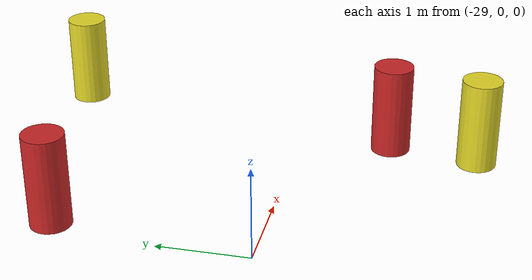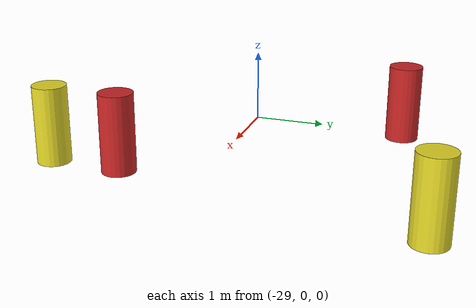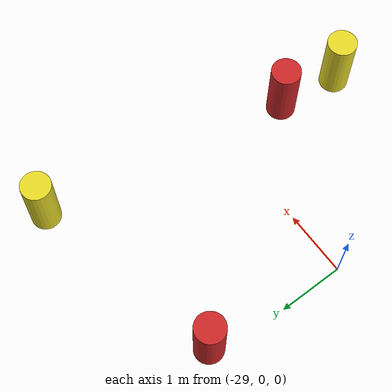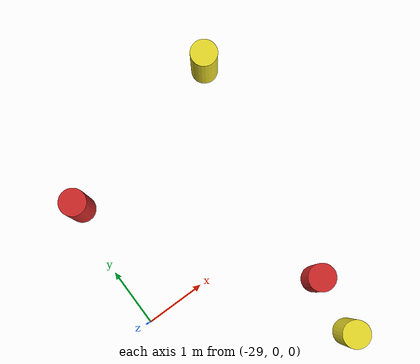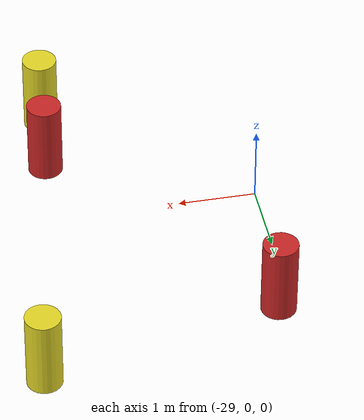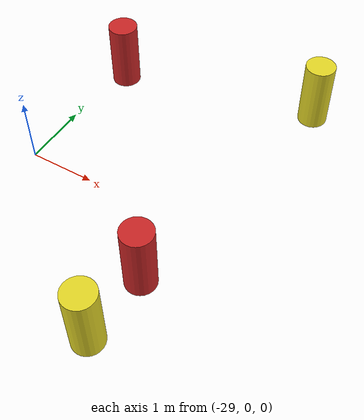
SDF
<sdf version="1.10">
 <world name="IGVC_AutoNav">
  <model name="barrel_11">
   <link name="link">
    <inertial>
     <mass>1</mass>
     <inertia>
      <ixx>0.14583299999999999</ixx>
      <ixy>0</ixy>
      <ixz>0</ixz>
      <iyy>0.14583299999999999</iyy>
      <iyz>0</iyz>
      <izz>0.125</izz>
     </inertia>
    </inertial>
    <visual name="visual">
     <geometry><cylinder><radius>0.222916</radius><length>1.0356700000000001</length></cylinder></geometry>
     <material>
      <script><name>Gazebo/Yellow</name><uri>file://media/materials/scripts/gazebo.material</uri></script>
      <shader type="pixel"/>
     </material>
    </visual>
    <collision name="collision">
     <geometry><cylinder><radius>0.222916</radius><length>1.0356700000000001</length></cylinder></geometry>
     <surface>
      <friction>
       <ode><mu>1</mu><mu2>1</mu2><fdir1>0 0 0</fdir1><slip1>0</slip1><slip2>0</slip2></ode>
       <torsional>
        <coefficient>1</coefficient>
        <patch_radius>0</patch_radius>
        <surface_radius>0</surface_radius>
        <use_patch_radius>true</use_patch_radius>
        <ode><slip>0</slip></ode>
       </torsional>
      </friction>
      <bounce><restitution_coefficient>0</restitution_coefficient><threshold>1000000</threshold></bounce>
      <contact>
       <collide_without_contact>false</collide_without_contact>
       <collide_without_contact_bitmask>1</collide_without_contact_bitmask>
       <collide_bitmask>1</collide_bitmask>
       <ode>
        <soft_cfm>0</soft_cfm>
        <soft_erp>0.20000000000000001</soft_erp>
        <kp>10000000000000</kp>
        <kd>1</kd>
        <max_vel>0.01</max_vel>
        <min_depth>0</min_depth>
       </ode>
       <bullet>
        <split_impulse>true</split_impulse>
        <split_impulse_penetration_threshold>-0.01</split_impulse_penetration_threshold>
        <soft_cfm>0</soft_cfm>
        <soft_erp>0.20000000000000001</soft_erp>
        <kp>10000000000000</kp>
        <kd>1</kd>
       </bullet>
      </contact>
     </surface>
    </collision>
   </link>
   <static>false</static>
   <pose>-26.542016983032227 -2.0249800682067871 0.48987001040062333 -1.2867676321097474e-16 8.4994269969485822e-17 -8.2203599658712203e-18</pose>
  </model>
  <model name="barrel_16">
   <link name="link">
    <inertial>
     <mass>1</mass>
     <inertia>
      <ixx>0.14583299999999999</ixx>
      <ixy>0</ixy>
      <ixz>0</ixz>
      <iyy>0.14583299999999999</iyy>
      <iyz>0</iyz>
      <izz>0.125</izz>
     </inertia>
    </inertial>
    <visual name="visual">
     <geometry><cylinder><radius>0.222916</radius><length>1.0356700000000001</length></cylinder></geometry>
     <material>
      <script><name>Gazebo/Yellow</name><uri>file://media/materials/scripts/gazebo.material</uri></script>
      <shader type="pixel"/>
     </material>
    </visual>
    <collision name="collision">
     <geometry><cylinder><radius>0.222916</radius><length>1.0356700000000001</length></cylinder></geometry>
     <surface>
      <friction>
       <ode><mu>1</mu><mu2>1</mu2><fdir1>0 0 0</fdir1><slip1>0</slip1><slip2>0</slip2></ode>
       <torsional>
        <coefficient>1</coefficient>
        <patch_radius>0</patch_radius>
        <surface_radius>0</surface_radius>
        <use_patch_radius>true</use_patch_radius>
        <ode><slip>0</slip></ode>
       </torsional>
      </friction>
      <bounce><restitution_coefficient>0</restitution_coefficient><threshold>1000000</threshold></bounce>
      <contact>
       <collide_without_contact>false</collide_without_contact>
       <collide_without_contact_bitmask>1</collide_without_contact_bitmask>
       <collide_bitmask>1</collide_bitmask>
       <ode>
        <soft_cfm>0</soft_cfm>
        <soft_erp>0.20000000000000001</soft_erp>
        <kp>10000000000000</kp>
        <kd>1</kd>
        <max_vel>0.01</max_vel>
        <min_depth>0</min_depth>
       </ode>
       <bullet>
        <split_impulse>true</split_impulse>
        <split_impulse_penetration_threshold>-0.01</split_impulse_penetration_threshold>
        <soft_cfm>0</soft_cfm>
        <soft_erp>0.20000000000000001</soft_erp>
        <kp>10000000000000</kp>
        <kd>1</kd>
       </bullet>
      </contact>
     </surface>
    </collision>
   </link>
   <static>false</static>
   <pose>-25.781974792480469 2.863569974899292 0.49057155326225477 -8.1219256546073404e-17 3.7478138114279507e-17 -2.3832538959433325e-17</pose>
  </model>
  <model name="barrel_26_clone">
   <link name="link">
    <inertial>
     <mass>1</mass>
     <inertia>
      <ixx>0.14583299999999999</ixx>
      <ixy>0</ixy>
      <ixz>0</ixz>
      <iyy>0.14583299999999999</iyy>
      <iyz>0</iyz>
      <izz>0.125</izz>
     </inertia>
    </inertial>
    <visual name="visual">
     <geometry><cylinder><radius>0.222916</radius><length>1.0356700000000001</length></cylinder></geometry>
     <material>
      <script><name>Gazebo/Red</name><uri>file://media/materials/scripts/gazebo.material</uri></script>
      <shader type="pixel"/>
     </material>
    </visual>
    <collision name="collision">
     <geometry><cylinder><radius>0.222916</radius><length>1.0356700000000001</length></cylinder></geometry>
     <surface>
      <friction>
       <ode><mu>1</mu><mu2>1</mu2><fdir1>0 0 0</fdir1><slip1>0</slip1><slip2>0</slip2></ode>
       <torsional>
        <coefficient>1</coefficient>
        <patch_radius>0</patch_radius>
        <surface_radius>0</surface_radius>
        <use_patch_radius>true</use_patch_radius>
        <ode><slip>0</slip></ode>
       </torsional>
      </friction>
      <bounce><restitution_coefficient>0</restitution_coefficient><threshold>1000000</threshold></bounce>
      <contact>
       <collide_without_contact>false</collide_without_contact>
       <collide_without_contact_bitmask>1</collide_without_contact_bitmask>
       <collide_bitmask>1</collide_bitmask>
       <ode>
        <soft_cfm>0</soft_cfm>
        <soft_erp>0.20000000000000001</soft_erp>
        <kp>10000000000000</kp>
        <kd>1</kd>
        <max_vel>0.01</max_vel>
        <min_depth>0</min_depth>
       </ode>
       <bullet>
        <split_impulse>true</split_impulse>
        <split_impulse_penetration_threshold>-0.01</split_impulse_penetration_threshold>
        <soft_cfm>0</soft_cfm>
        <soft_erp>0.20000000000000001</soft_erp>
        <kp>10000000000000</kp>
        <kd>1</kd>
       </bullet>
      </contact>
     </surface>
    </collision>
   </link>
   <static>false</static>
   <pose>-28.813776016235352 2.1700680255889888 0.51783403716017551 -6.6859053598700135e-20 -1.5574018807738785e-19 0.00032800204395827976</pose>
  </model>
  <model name="barrel_26_clone_0">
   <link name="link">
    <inertial>
     <mass>1</mass>
     <inertia>
      <ixx>0.14583299999999999</ixx>
      <ixy>0</ixy>
      <ixz>0</ixz>
      <iyy>0.14583299999999999</iyy>
      <iyz>0</iyz>
      <izz>0.125</izz>
     </inertia>
    </inertial>
    <visual name="visual">
     <geometry><cylinder><radius>0.222916</radius><length>1.0356700000000001</length></cylinder></geometry>
     <material>
      <script><name>Gazebo/Red</name><uri>file://media/materials/scripts/gazebo.material</uri></script>
      <shader type="pixel"/>
     </material>
    </visual>
    <collision name="collision">
     <geometry><cylinder><radius>0.222916</radius><length>1.0356700000000001</length></cylinder></geometry>
     <surface>
      <friction>
       <ode><mu>1</mu><mu2>1</mu2><fdir1>0 0 0</fdir1><slip1>0</slip1><slip2>0</slip2></ode>
       <torsional>
        <coefficient>1</coefficient>
        <patch_radius>0</patch_radius>
        <surface_radius>0</surface_radius>
        <use_patch_radius>true</use_patch_radius>
        <ode><slip>0</slip></ode>
       </torsional>
      </friction>
      <bounce><restitution_coefficient>0</restitution_coefficient><threshold>1000000</threshold></bounce>
      <contact>
       <collide_without_contact>false</collide_without_contact>
       <collide_without_contact_bitmask>1</collide_without_contact_bitmask>
       <collide_bitmask>1</collide_bitmask>
       <ode>
        <soft_cfm>0</soft_cfm>
        <soft_erp>0.20000000000000001</soft_erp>
        <kp>10000000000000</kp>
        <kd>1</kd>
        <max_vel>0.01</max_vel>
        <min_depth>0</min_depth>
       </ode>
       <bullet>
        <split_impulse>true</split_impulse>
        <split_impulse_penetration_threshold>-0.01</split_impulse_penetration_threshold>
        <soft_cfm>0</soft_cfm>
        <soft_erp>0.20000000000000001</soft_erp>
        <kp>10000000000000</kp>
        <kd>1</kd>
       </bullet>
      </contact>
     </surface>
    </collision>
   </link>
   <static>false</static>
   <pose>-26.440006256103519 -1.0356423854827883 0.51783403716017518 -9.7774205215186852e-20 -1.8017080459592399e-20 0.00032800204395827981</pose>
  </model>
 </world>
</sdf>
